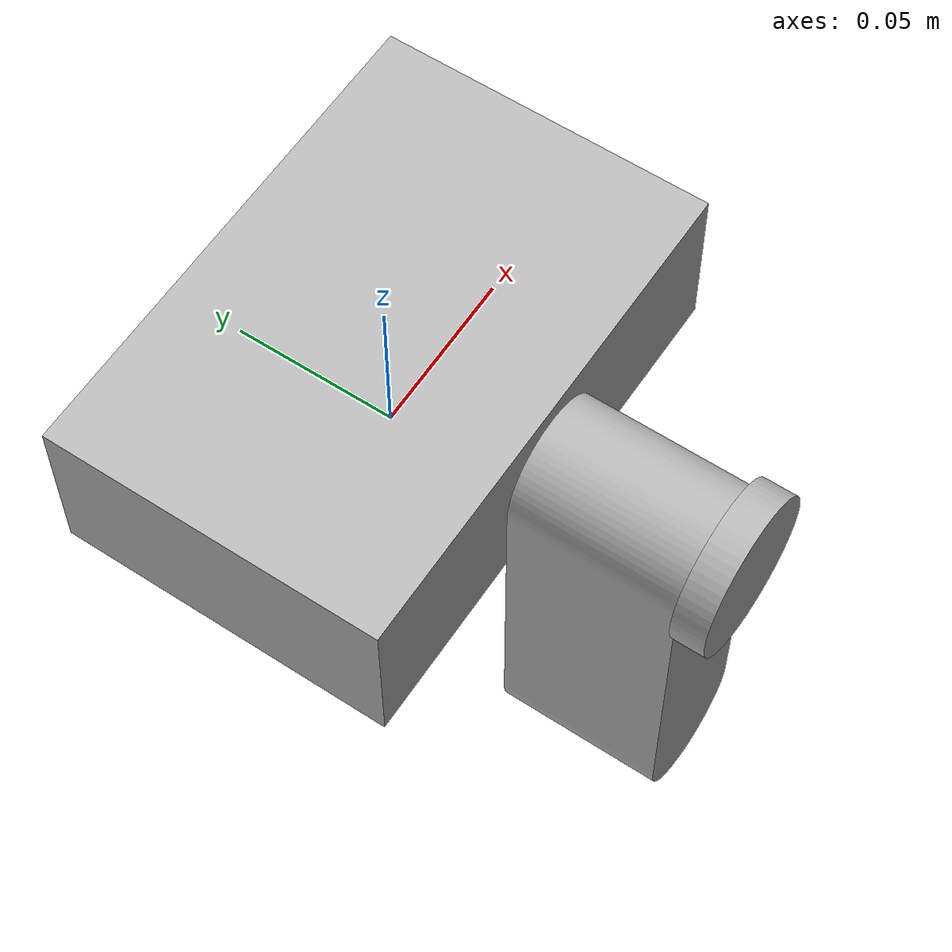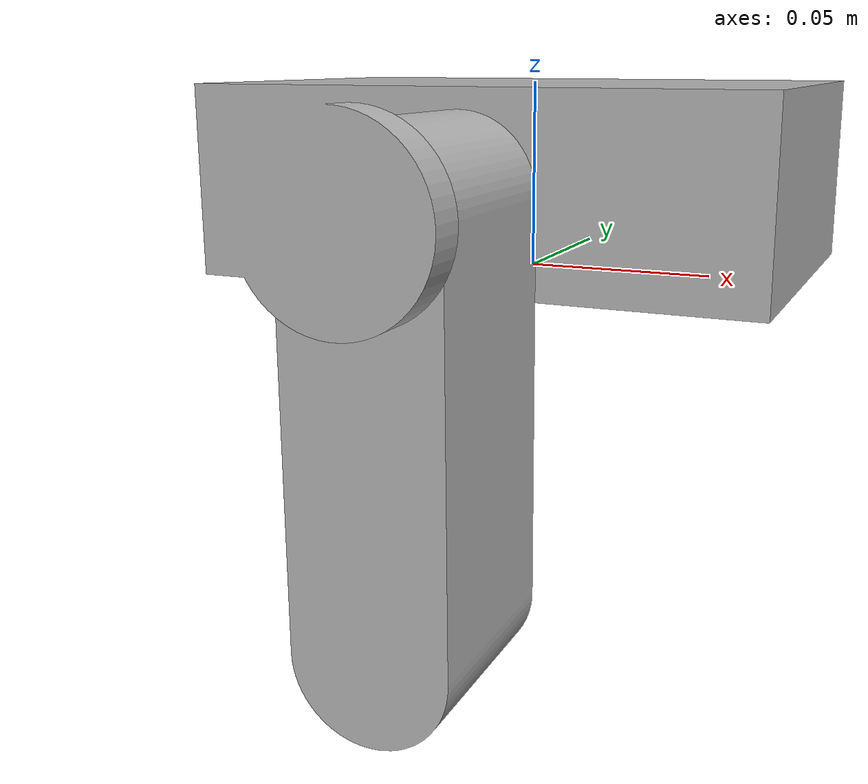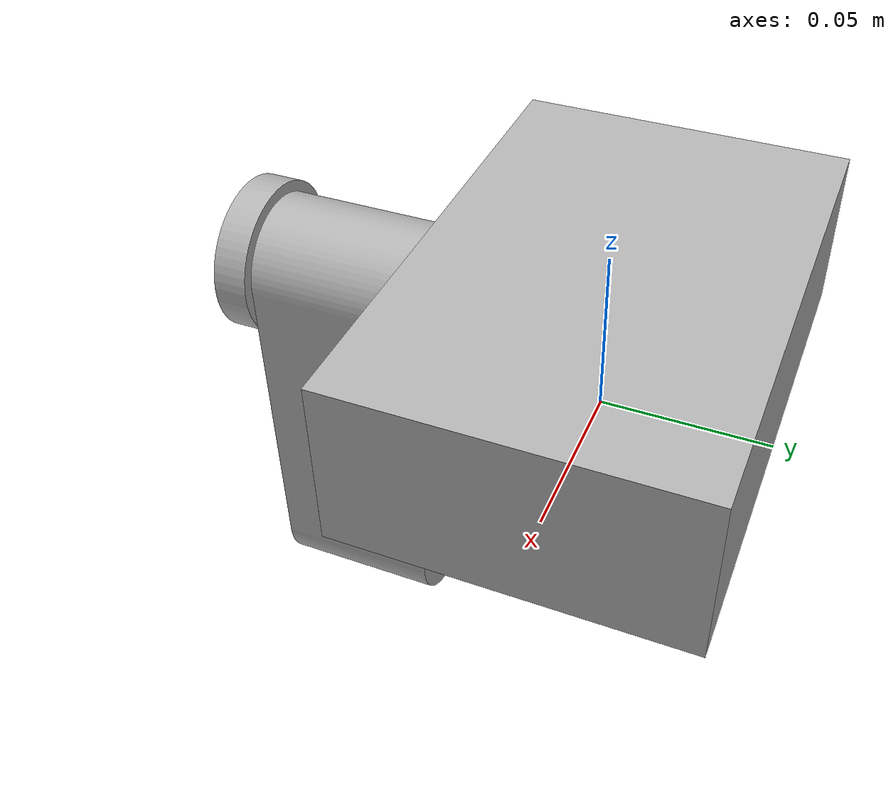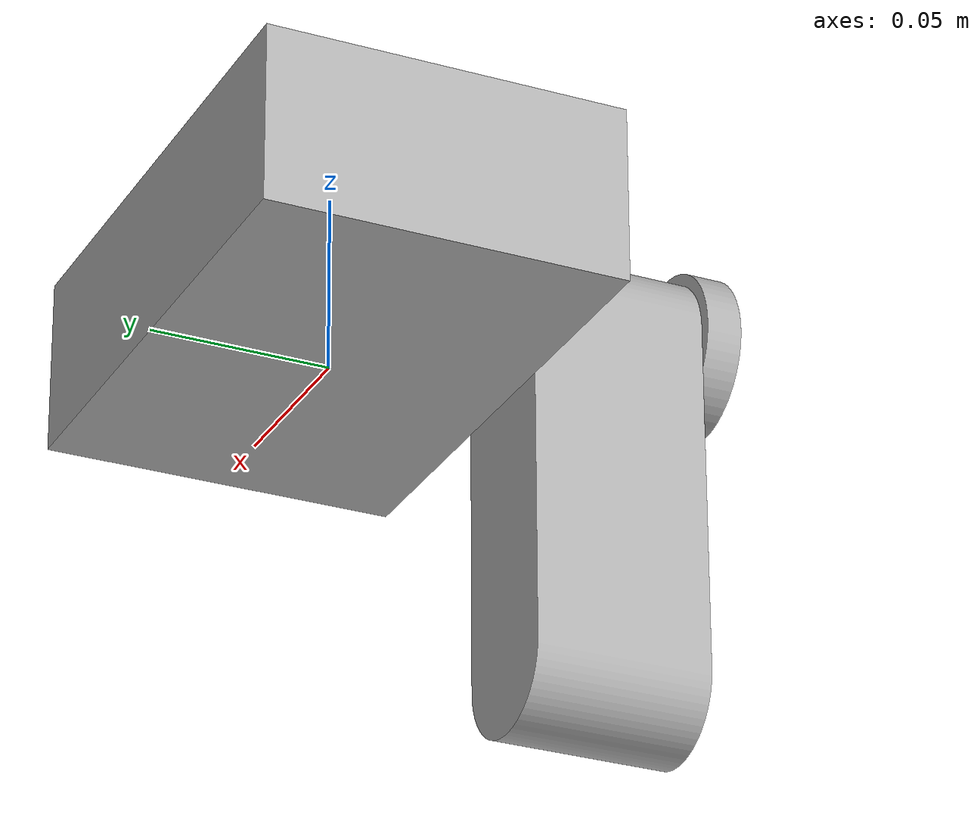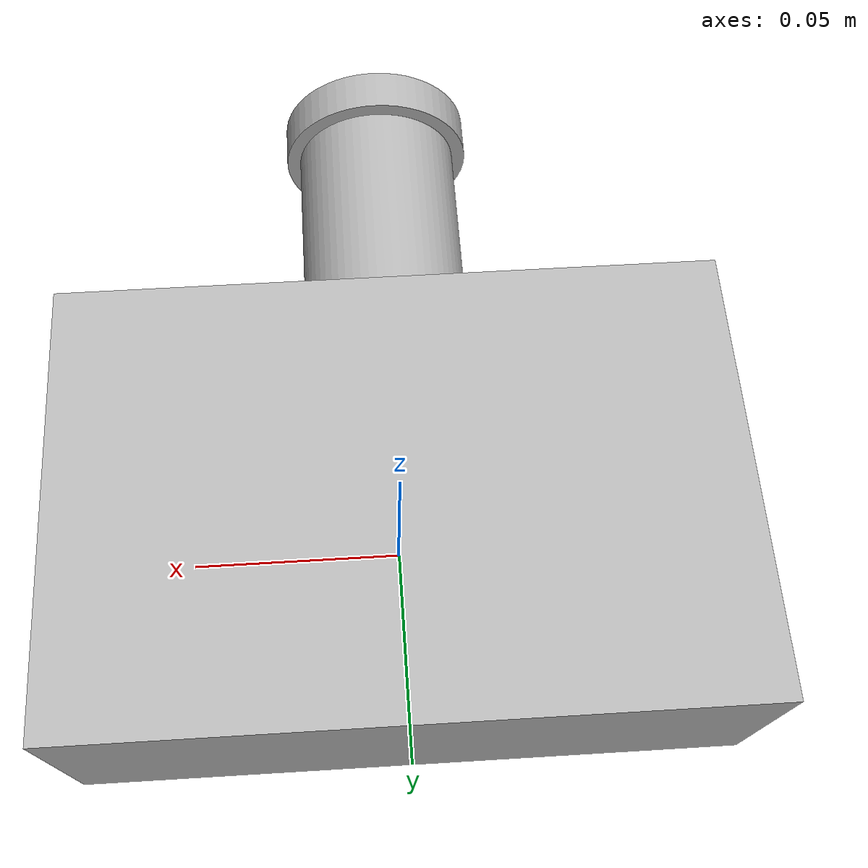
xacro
<?xml version="1.0" ?>
<robot name="Pendulo_prueba" xmlns:xacro="http://www.ros.org/wiki/xacro">

<xacro:include filename="$(find pendulo_prueba_description)/urdf/materials.xacro" />
<xacro:include filename="$(find pendulo_prueba_description)/urdf/Pendulo_prueba.ros2control" />
<xacro:include filename="$(find pendulo_prueba_description)/urdf/Pendulo_prueba.gazebo" />
<link name="base_footprint"/>

  <joint name="base_footprint_joint" type="fixed">
    <parent link="base_footprint"/>
    <child link="base_link"/>
    <origin xyz="0 0 0" rpy="0 0 0"/>
  </joint>
<link name="base_link">
  <inertial>
    <origin xyz="-2.3938994665056634e-13 -0.005501928733996619 0.02500000002421002" rpy="0 0 0"/>
    <mass value="6.296712580102756"/>
    <inertia ixx="0.009048" iyy="0.012332" izz="0.01886" ixy="-0.0" iyz="0.0" ixz="-0.0"/>
  </inertial>
  <visual>
    <origin xyz="0 0 0" rpy="0 0 0"/>
    <geometry>
      <mesh filename="package://pendulo_prueba_description/meshes/base_link.stl" scale="0.001 0.001 0.001"/>
    </geometry>
    <material name="silver"/>
  </visual>
  <collision>
    <origin xyz="0 0 0" rpy="0 0 0"/>
    <geometry>
      <mesh filename="package://pendulo_prueba_description/meshes/base_link.stl" scale="0.001 0.001 0.001"/>
    </geometry>
  </collision>
</link>

<link name="pendulo_1">
  <inertial>
    <origin xyz="0.004191068534825609 5.551115123125783e-17 -0.05794616265917223" rpy="0 0 0"/>
    <mass value="1.7459655095130093"/>
    <inertia ixx="0.002457" iyy="0.002339" izz="0.000604" ixy="-0.0" iyz="-0.0" ixz="0.000135"/>
  </inertial>
  <visual>
    <origin xyz="-0.0 0.075 -0.025" rpy="0 0 0"/>
    <geometry>
      <mesh filename="package://pendulo_prueba_description/meshes/pendulo_1.stl" scale="0.001 0.001 0.001"/>
    </geometry>
    <material name="silver"/>
  </visual>
  <collision>
    <origin xyz="-0.0 0.075 -0.025" rpy="0 0 0"/>
    <geometry>
      <mesh filename="package://pendulo_prueba_description/meshes/pendulo_1.stl" scale="0.001 0.001 0.001"/>
    </geometry>
  </collision>
</link>

<joint name="joint1" type="continuous">
  <origin xyz="0.0 -0.075 0.025" rpy="0 0 0"/>
  <parent link="base_link"/>
  <child link="pendulo_1"/>
  <axis xyz="0.0 -1.0 0.0"/>
</joint>

<gazebo reference="base_link">
    <static>true</static>
  </gazebo>

  <gazebo reference="pendulo_1">
    <visual>
      <material>
        <ambient>0.8 0.8 0.8 1.0</ambient>
        <diffuse>0.8 0.8 0.8 1.0</diffuse>
        <specular>1.0 1.0 1.0 1.0</specular>
      </material>
    </visual>
  </gazebo>

</robot>

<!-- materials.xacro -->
<robot name="Pendulo_prueba" xmlns:xacro="http://www.ros.org/wiki/xacro" >

<material name="silver">
  <color rgba="0.700 0.700 0.700 1.000"/>
</material>

</robot>

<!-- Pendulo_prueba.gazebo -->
<robot name="Pendulo_prueba" xmlns:xacro="http://www.ros.org/wiki/xacro" >

<xacro:property name="body_color" value="Gazebo/Silver" />

<gazebo reference="base_link">
  <material>${body_color}</material>
  <mu1>0.2</mu1>
  <mu2>0.2</mu2>
  <self_collide>true</self_collide>
  <gravity>true</gravity>
</gazebo>

<gazebo reference="pendulo_1">
  <material>${body_color}</material>
  <mu1>0.2</mu1>
  <mu2>0.2</mu2>
  <self_collide>true</self_collide>
</gazebo>

</robot>
